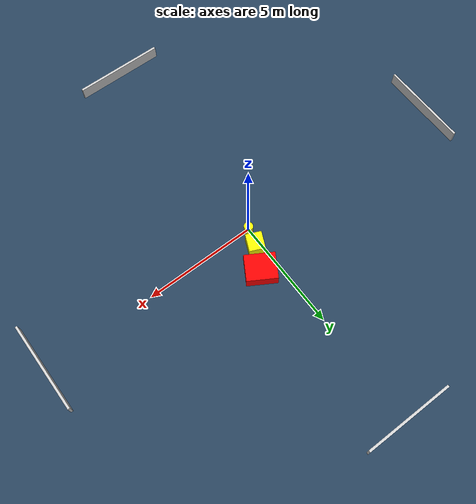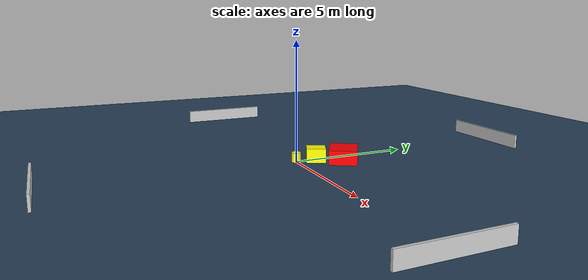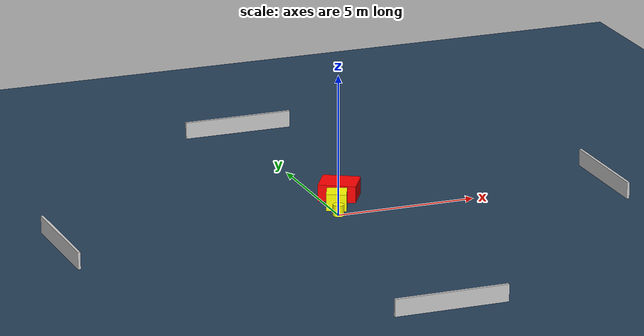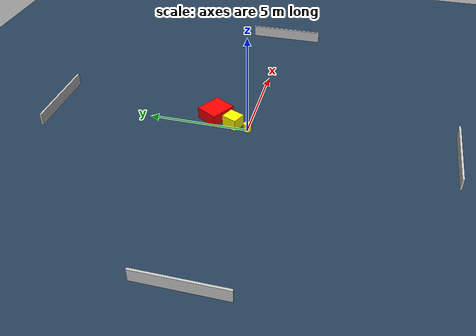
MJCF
<?xml version="1.0" ?>
<mujoco model="generated_environment">
  <option timestep="0.01" integrator="RK4" cone="elliptic"/>
  <default>
    <geom density="1"/>
  </default>
  <asset>
    <texture builtin="gradient" height="3072" name="skybox" rgb1="0.3 0.5 0.7" rgb2="0 0 0" type="skybox" width="512"/>
    <texture builtin="checker" height="300" name="groundplane" rgb1="0.2 0.3 0.4" rgb2="0.1 0.2 0.3" type="2d" width="300"/>
    <material name="groundplane" reflectance="0.2" texrepeat="5 5" texture="groundplane"/>
  </asset>
  <worldbody>
    <light dir="0 0 -1" directional="true" pos="0 0 1.5"/>
    <geom condim="3" friction="0.5 0.005 0.001" material="groundplane" name="floor" pos="0 0 0" size="0 0 0.05" type="plane"/>
    <body name="walls">
      <geom name="wall_1" condim="4" pos="-10.0 0.0 0.3" rgba="0.800000011920929 0.800000011920929 0.800000011920929 1.0" size="0.05 2.0 0.3" type="box"/>
      <geom name="wall_2" condim="4" pos="10.0 0.0 0.3" rgba="0.800000011920929 0.800000011920929 0.800000011920929 1.0" size="0.05 2.0 0.3" type="box"/>
      <geom name="wall_3" condim="4" pos="0.0 -10.0 0.3" rgba="0.800000011920929 0.800000011920929 0.800000011920929 1.0" size="2.0 0.05 0.3" type="box"/>
      <geom name="wall_4" condim="4" pos="0.0 10.0 0.3" rgba="0.800000011920929 0.800000011920929 0.800000011920929 1.0" size="2.0 0.05 0.3" type="box"/>
    </body>
    <body name="robot">
      <joint name="joint_x" type="slide" pos="0 0 0" axis="1 0 0"/>
      <joint name="joint_y" type="slide" pos="0 0 0" axis="0 1 0"/>
      <geom name="robot" type="cylinder" pos="0.0 0.0 0.2" size="0.2 0.2 0.0" mass="5.0" friction="1.0 0.005 0.0001" condim="4" rgba="1.0 1.0 0.0 1.0"/>
    </body>
    <body name="obstacle_1_movable">
      <geom name="obstacle_1_movable" condim="4" pos="0.24031919768538793 0.7872651799832451 0.3" euler="0 0 336.1580637991906" friction="0.0 0.005 0.001" rgba="1.0 1.0 0.0 1.0" size="0.35174836252739283 0.3953687028153734 0.3" type="box" mass="0.1"/>
      <joint type="free"/>
    </body>
    <body name="obstacle_2_static">
      <geom name="obstacle_2_static" condim="4" pos="0.7402198500323522 1.816694223340878 0.3" euler="0 0 329.26805291963865" friction="0.0 0.005 0.001" rgba="1.0 0.0 0.0 1.0" size="0.6660504608425319 0.578944020223066 0.3" type="box"/>
    </body>
  </worldbody>
  <actuator>
    <motor name="actuator_x" joint="joint_x" gear="1" ctrlrange="-1 1"/>
    <motor name="actuator_y" joint="joint_y" gear="1" ctrlrange="-1 1"/>
  </actuator>
</mujoco>
